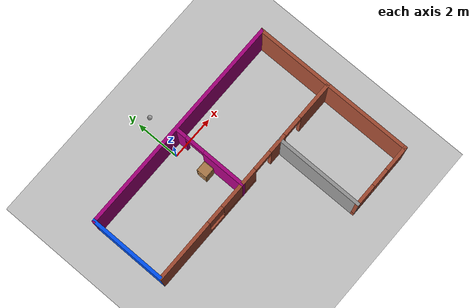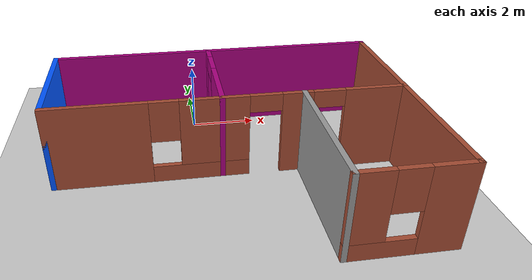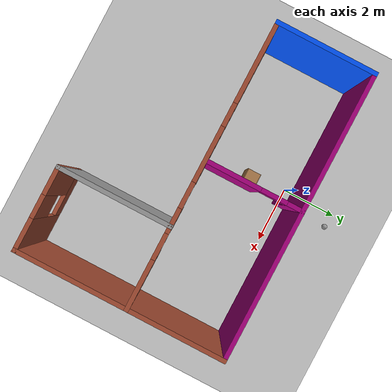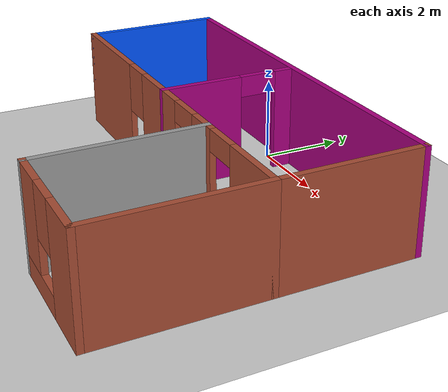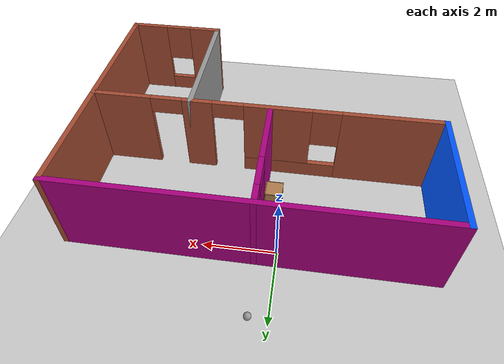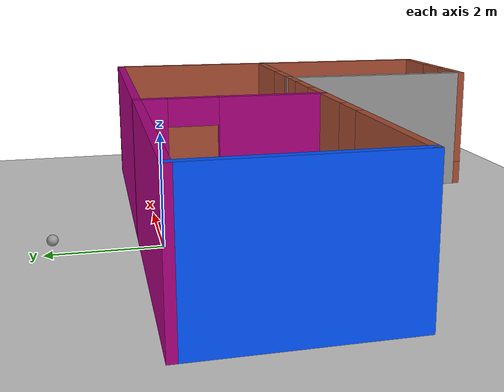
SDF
<sdf version="1.6">
 <world name="default">
  <plugin name="welcome" filename="libwelcome.so"/>
  <light name="sun" type="directional">
   <pose>0 0 10 0 -0 0</pose>
   <diffuse>0.8 0.8 0.8 1</diffuse>
   <specular>0.2 0.2 0.2 1</specular>
   <attenuation>
    <range>1000</range>
    <constant>0.9</constant>
    <linear>0.01</linear>
    <quadratic>0.001</quadratic>
   </attenuation>
   <direction>-0.5 0.1 -0.9</direction>
  </light>
  <model name="ground_plane">
   <static>1</static>
   <link name="link">
    <collision name="collision">
     <geometry><plane><normal>0 0 1</normal><size>100 100</size></plane></geometry>
     <surface><friction><ode><mu>100</mu><mu2>50</mu2></ode></friction></surface>
    </collision>
    <visual name="visual">
     <cast_shadows>0</cast_shadows>
     <geometry><plane><normal>0 0 1</normal><size>100 100</size></plane></geometry>
     <material>
      <script><uri>file://media/materials/scripts/gazebo.material</uri><name>Gazebo/Grey</name></script>
     </material>
    </visual>
   </link>
  </model>
  <gravity>0 0 -9.8</gravity>
  <magnetic_field>6e-06 2.3e-05 -4.2e-05</magnetic_field>
  <atmosphere type="adiabatic"/>
  <physics name="default_physics" default="0" type="ode">
   <max_step_size>0.001</max_step_size>
   <real_time_factor>1</real_time_factor>
   <real_time_update_rate>1000</real_time_update_rate>
  </physics>
  <scene><ambient>0.4 0.4 0.4 1</ambient><background>0.7 0.7 0.7 1</background><shadows>1</shadows></scene>
  <spherical_coordinates>
   <surface_model>EARTH_WGS84</surface_model>
   <latitude_deg>0</latitude_deg>
   <longitude_deg>0</longitude_deg>
   <elevation>0</elevation>
   <heading_deg>0</heading_deg>
  </spherical_coordinates>
  <model name="prj1_building">
   <pose>0.75687 -3.26578 0 0 -0 0</pose>
   <link name="Wall_33">
    <collision name="Wall_33_Collision">
     <geometry><box><size>3.5 0.15 2.5</size></box></geometry>
     <pose>0 0 1.25 0 -0 0</pose>
    </collision>
    <visual name="Wall_33_Visual">
     <pose>0 0 1.25 0 -0 0</pose>
     <geometry><box><size>3.5 0.15 2.5</size></box></geometry>
     <material>
      <script><uri>file://media/materials/scripts/gazebo.material</uri><name>Gazebo/Grey</name></script>
      <ambient>0 0.333333 1 1</ambient>
     </material>
     <meta><layer>0</layer></meta>
    </visual>
    <pose>-4.925 1.925 0 0 0 -1.5708</pose>
   </link>
   <link name="Wall_34">
    <pose>0 0.25 0 0 -0 0</pose>
    <visual name="Wall_34_Visual_0">
     <pose>-3.57883 0 1.25 0 -0 0</pose>
     <geometry><box><size>2.84234 0.15 2.5</size></box></geometry>
     <material>
      <script><uri>file://media/materials/scripts/gazebo.material</uri><name>Gazebo/Bricks</name></script>
      <ambient>1 1 1 1</ambient>
     </material>
     <meta><layer>0</layer></meta>
    </visual>
    <collision name="Wall_34_Collision_0">
     <geometry><box><size>2.84234 0.15 2.5</size></box></geometry>
     <pose>-3.57883 0 1.25 0 -0 0</pose>
    </collision>
    <visual name="Wall_34_Visual_1">
     <pose>1.88711 0 1.25 0 -0 0</pose>
     <geometry><box><size>0.866598 0.15 2.5</size></box></geometry>
     <material>
      <script><uri>file://media/materials/scripts/gazebo.material</uri><name>Gazebo/Bricks</name></script>
      <ambient>1 1 1 1</ambient>
     </material>
     <meta><layer>0</layer></meta>
    </visual>
    <collision name="Wall_34_Collision_1">
     <geometry><box><size>0.866598 0.15 2.5</size></box></geometry>
     <pose>1.88711 0 1.25 0 -0 0</pose>
    </collision>
    <visual name="Wall_34_Visual_2">
     <pose>4.1102 0 1.25 0 -0 0</pose>
     <geometry><box><size>1.7796 0.15 2.5</size></box></geometry>
     <material>
      <script><uri>file://media/materials/scripts/gazebo.material</uri><name>Gazebo/Bricks</name></script>
      <ambient>1 1 1 1</ambient>
     </material>
     <meta><layer>0</layer></meta>
    </visual>
    <collision name="Wall_34_Collision_2">
     <geometry><box><size>1.7796 0.15 2.5</size></box></geometry>
     <pose>4.1102 0 1.25 0 -0 0</pose>
    </collision>
    <visual name="Wall_34_Visual_3">
     <pose>-0.801928 0 0.25 0 -0 0</pose>
     <geometry><box><size>2.71147 0.15 0.5</size></box></geometry>
     <material>
      <script><uri>file://media/materials/scripts/gazebo.material</uri><name>Gazebo/Bricks</name></script>
      <ambient>1 1 1 1</ambient>
     </material>
     <meta><layer>0</layer></meta>
    </visual>
    <collision name="Wall_34_Collision_3">
     <geometry><box><size>2.71147 0.15 0.5</size></box></geometry>
     <pose>-0.801928 0 0.25 0 -0 0</pose>
    </collision>
    <visual name="Wall_34_Visual_4">
     <pose>-0.401928 0 1.5 0 -0 0</pose>
     <geometry><box><size>1.91147 0.15 2</size></box></geometry>
     <material>
      <script><uri>file://media/materials/scripts/gazebo.material</uri><name>Gazebo/Bricks</name></script>
      <ambient>1 1 1 1</ambient>
     </material>
     <meta><layer>0</layer></meta>
    </visual>
    <collision name="Wall_34_Collision_4">
     <geometry><box><size>1.91147 0.15 2</size></box></geometry>
     <pose>-0.401928 0 1.5 0 -0 0</pose>
    </collision>
    <visual name="Wall_34_Visual_5">
     <pose>-1.75766 0 1.9 0 -0 0</pose>
     <geometry><box><size>0.8 0.15 1.2</size></box></geometry>
     <material>
      <script><uri>file://media/materials/scripts/gazebo.material</uri><name>Gazebo/Bricks</name></script>
      <ambient>1 1 1 1</ambient>
     </material>
     <meta><layer>0</layer></meta>
    </visual>
    <collision name="Wall_34_Collision_5">
     <geometry><box><size>0.8 0.15 1.2</size></box></geometry>
     <pose>-1.75766 0 1.9 0 -0 0</pose>
    </collision>
    <visual name="Wall_34_Visual_6">
     <pose>2.7704 0 2.25 0 -0 0</pose>
     <geometry><box><size>0.9 0.15 0.5</size></box></geometry>
     <material>
      <script><uri>file://media/materials/scripts/gazebo.material</uri><name>Gazebo/Bricks</name></script>
      <ambient>1 1 1 1</ambient>
     </material>
     <meta><layer>0</layer></meta>
    </visual>
    <collision name="Wall_34_Collision_6">
     <geometry><box><size>0.9 0.15 0.5</size></box></geometry>
     <pose>2.7704 0 2.25 0 -0 0</pose>
    </collision>
    <visual name="Wall_34_Visual_7">
     <pose>1.00381 0 2.25 0 -0 0</pose>
     <geometry><box><size>0.9 0.15 0.5</size></box></geometry>
     <material>
      <script><uri>file://media/materials/scripts/gazebo.material</uri><name>Gazebo/Bricks</name></script>
      <ambient>1 1 1 1</ambient>
     </material>
     <meta><layer>0</layer></meta>
    </visual>
    <collision name="Wall_34_Collision_7">
     <geometry><box><size>0.9 0.15 0.5</size></box></geometry>
     <pose>1.00381 0 2.25 0 -0 0</pose>
    </collision>
   </link>
   <link name="Wall_35">
    <collision name="Wall_35_Collision">
     <geometry><box><size>3.5 0.15 2.5</size></box></geometry>
     <pose>0 0 1.25 0 -0 0</pose>
    </collision>
    <visual name="Wall_35_Visual">
     <pose>0 0 1.25 0 -0 0</pose>
     <geometry><box><size>3.5 0.15 2.5</size></box></geometry>
     <material>
      <script><uri>file://media/materials/scripts/gazebo.material</uri><name>Gazebo/Bricks</name></script>
      <ambient>1 1 1 1</ambient>
     </material>
     <meta><layer>0</layer></meta>
    </visual>
    <pose>4.925 1.925 0 0 -0 1.5708</pose>
   </link>
   <link name="Wall_36">
    <collision name="Wall_36_Collision">
     <geometry><box><size>10 0.15 2.5</size></box></geometry>
     <pose>0 0 1.25 0 -0 0</pose>
    </collision>
    <visual name="Wall_36_Visual">
     <pose>0 0 1.25 0 -0 0</pose>
     <geometry><box><size>10 0.15 2.5</size></box></geometry>
     <material>
      <script><uri>file://media/materials/scripts/gazebo.material</uri><name>Gazebo/Grey</name></script>
      <ambient>0.666667 0 0.498039 1</ambient>
     </material>
     <meta><layer>0</layer></meta>
    </visual>
    <pose>0 3.6 0 0 -0 3.14159</pose>
   </link>
   <link name="Wall_38">
    <pose>-0.198311 1.925 0 0 0 -1.5708</pose>
    <visual name="Wall_38_Visual_0">
     <pose>-1.44985 0 1.25 0 -0 0</pose>
     <geometry><box><size>0.600302 0.15 2.5</size></box></geometry>
     <material>
      <script><uri>file://media/materials/scripts/gazebo.material</uri><name>Gazebo/Grey</name></script>
      <ambient>0.666667 0 0.498039 1</ambient>
     </material>
     <meta><layer>0</layer></meta>
    </visual>
    <collision name="Wall_38_Collision_0">
     <geometry><box><size>0.600302 0.15 2.5</size></box></geometry>
     <pose>-1.44985 0 1.25 0 -0 0</pose>
    </collision>
    <visual name="Wall_38_Visual_1">
     <pose>0.750151 0 1.25 0 -0 0</pose>
     <geometry><box><size>1.9997 0.15 2.5</size></box></geometry>
     <material>
      <script><uri>file://media/materials/scripts/gazebo.material</uri><name>Gazebo/Grey</name></script>
      <ambient>0.666667 0 0.498039 1</ambient>
     </material>
     <meta><layer>0</layer></meta>
    </visual>
    <collision name="Wall_38_Collision_1">
     <geometry><box><size>1.9997 0.15 2.5</size></box></geometry>
     <pose>0.750151 0 1.25 0 -0 0</pose>
    </collision>
    <visual name="Wall_38_Visual_2">
     <pose>-0.699698 0 2.25 0 -0 0</pose>
     <geometry><box><size>0.9 0.15 0.5</size></box></geometry>
     <material>
      <script><uri>file://media/materials/scripts/gazebo.material</uri><name>Gazebo/Grey</name></script>
      <ambient>0.666667 0 0.498039 1</ambient>
     </material>
     <meta><layer>0</layer></meta>
    </visual>
    <collision name="Wall_38_Collision_2">
     <geometry><box><size>0.9 0.15 0.5</size></box></geometry>
     <pose>-0.699698 0 2.25 0 -0 0</pose>
    </collision>
   </link>
   <link name="Wall_44">
    <collision name="Wall_44_Collision">
     <geometry><box><size>4 0.15 2.5</size></box></geometry>
     <pose>0 0 1.25 0 -0 0</pose>
    </collision>
    <visual name="Wall_44_Visual">
     <pose>0 0 1.25 0 -0 0</pose>
     <geometry><box><size>4 0.15 2.5</size></box></geometry>
     <material>
      <script><uri>file://media/materials/scripts/gazebo.material</uri><name>Gazebo/Bricks</name></script>
      <ambient>1 1 1 1</ambient>
     </material>
     <meta><layer>0</layer></meta>
    </visual>
    <pose>4.925 -1.675 0 0 0 -1.5708</pose>
   </link>
   <link name="Wall_45">
    <pose>3.5 -3.6 0 0 -0 3.14159</pose>
    <visual name="Wall_45_Visual_0">
     <pose>-0.907945 0 1.25 0 -0 0</pose>
     <geometry><box><size>1.18411 0.15 2.5</size></box></geometry>
     <material>
      <script><uri>file://media/materials/scripts/gazebo.material</uri><name>Gazebo/Bricks</name></script>
      <ambient>1 1 1 1</ambient>
     </material>
     <meta><layer>0</layer></meta>
    </visual>
    <collision name="Wall_45_Collision_0">
     <geometry><box><size>1.18411 0.15 2.5</size></box></geometry>
     <pose>-0.907945 0 1.25 0 -0 0</pose>
    </collision>
    <visual name="Wall_45_Visual_1">
     <pose>0.592055 0 0.25 0 -0 0</pose>
     <geometry><box><size>1.81589 0.15 0.5</size></box></geometry>
     <material>
      <script><uri>file://media/materials/scripts/gazebo.material</uri><name>Gazebo/Bricks</name></script>
      <ambient>1 1 1 1</ambient>
     </material>
     <meta><layer>0</layer></meta>
    </visual>
    <collision name="Wall_45_Collision_1">
     <geometry><box><size>1.81589 0.15 0.5</size></box></geometry>
     <pose>0.592055 0 0.25 0 -0 0</pose>
    </collision>
    <visual name="Wall_45_Visual_2">
     <pose>0.992055 0 1.5 0 -0 0</pose>
     <geometry><box><size>1.01589 0.15 2</size></box></geometry>
     <material>
      <script><uri>file://media/materials/scripts/gazebo.material</uri><name>Gazebo/Bricks</name></script>
      <ambient>1 1 1 1</ambient>
     </material>
     <meta><layer>0</layer></meta>
    </visual>
    <collision name="Wall_45_Collision_2">
     <geometry><box><size>1.01589 0.15 2</size></box></geometry>
     <pose>0.992055 0 1.5 0 -0 0</pose>
    </collision>
    <visual name="Wall_45_Visual_3">
     <pose>0.08411 0 1.9 0 -0 0</pose>
     <geometry><box><size>0.8 0.15 1.2</size></box></geometry>
     <material>
      <script><uri>file://media/materials/scripts/gazebo.material</uri><name>Gazebo/Bricks</name></script>
      <ambient>1 1 1 1</ambient>
     </material>
     <meta><layer>0</layer></meta>
    </visual>
    <collision name="Wall_45_Collision_3">
     <geometry><box><size>0.8 0.15 1.2</size></box></geometry>
     <pose>0.08411 0 1.9 0 -0 0</pose>
    </collision>
   </link>
   <link name="Wall_46">
    <collision name="Wall_46_Collision">
     <geometry><box><size>4 0.15 2.5</size></box></geometry>
     <pose>0 0 1.25 0 -0 0</pose>
    </collision>
    <visual name="Wall_46_Visual">
     <pose>0 0 1.25 0 -0 0</pose>
     <geometry><box><size>4 0.15 2.5</size></box></geometry>
     <material>
      <script><uri>file://media/materials/scripts/gazebo.material</uri><name>Gazebo/Grey</name></script>
      <ambient>1 1 1 1</ambient>
     </material>
     <meta><layer>0</layer></meta>
    </visual>
    <pose>2.075 -1.675 0 0 -0 1.5708</pose>
   </link>
   <static>1</static>
  </model>
  <model name="cabinet">
   <static>1</static>
   <link name="cabinet_bottom_plate">
    <inertial>
     <pose>0 0 -1 0 -0 0</pose>
     <inertia><ixx>2.05</ixx><ixy>0</ixy><ixz>0</ixz><iyy>2.05</iyy><iyz>0</iyz><izz>2.05</izz></inertia>
     <mass>25</mass>
    </inertial>
    <collision name="cabinet_bottom_plate_geom">
     <pose>0 0 0.01 0 -0 0</pose>
     <geometry><box><size>0.45 0.45 0.02</size></box></geometry>
    </collision>
    <visual name="cabinet_bottom_plate_geom_visual">
     <pose>0 0 0.01 0 -0 0</pose>
     <geometry><box><size>0.45 0.45 0.02</size></box></geometry>
     <material>
      <script><uri>file://media/materials/scripts/gazebo.material</uri><name>Gazebo/Wood</name></script>
     </material>
    </visual>
    <collision name="cabinet_bottom_plate_geom_cabinet_back_plate">
     <pose>0.235 0 0.51 0 -0 0</pose>
     <geometry><box><size>0.02 0.45 1.02</size></box></geometry>
    </collision>
    <visual name="cabinet_bottom_plate_geom_cabinet_back_plate_visual">
     <pose>0.235 0 0.51 0 -0 0</pose>
     <geometry><box><size>0.02 0.45 1.02</size></box></geometry>
     <material>
      <script><uri>file://media/materials/scripts/gazebo.material</uri><name>Gazebo/Wood</name></script>
     </material>
    </visual>
    <collision name="cabinet_bottom_plate_geom_cabinet_left_plate">
     <pose>0 0.235 0.51 0 -0 0</pose>
     <geometry><box><size>0.45 0.02 1.02</size></box></geometry>
    </collision>
    <visual name="cabinet_bottom_plate_geom_cabinet_left_plate_visual">
     <pose>0 0.235 0.51 0 -0 0</pose>
     <geometry><box><size>0.45 0.02 1.02</size></box></geometry>
     <material>
      <script><uri>file://media/materials/scripts/gazebo.material</uri><name>Gazebo/Wood</name></script>
     </material>
    </visual>
    <collision name="cabinet_bottom_plate_geom_cabinet_middle_plate">
     <pose>0 0 0.51 0 -0 0</pose>
     <geometry><box><size>0.45 0.45 0.02</size></box></geometry>
    </collision>
    <visual name="cabinet_bottom_plate_geom_cabinet_middle_plate_visual">
     <pose>0 0 0.51 0 -0 0</pose>
     <geometry><box><size>0.45 0.45 0.02</size></box></geometry>
     <material>
      <script><uri>file://media/materials/scripts/gazebo.material</uri><name>Gazebo/Wood</name></script>
     </material>
    </visual>
    <collision name="cabinet_bottom_plate_geom_cabinet_right_plate">
     <pose>0 -0.235 0.51 0 -0 0</pose>
     <geometry><box><size>0.45 0.02 1.02</size></box></geometry>
    </collision>
    <visual name="cabinet_bottom_plate_geom_cabinet_right_plate_visual">
     <pose>0 -0.235 0.51 0 -0 0</pose>
     <geometry><box><size>0.45 0.02 1.02</size></box></geometry>
     <material>
      <script><uri>file://media/materials/scripts/gazebo.material</uri><name>Gazebo/Wood</name></script>
     </material>
    </visual>
    <collision name="cabinet_bottom_plate_geom_cabinet_top_plate">
     <pose>0 0 1.01 0 -0 0</pose>
     <geometry><box><size>0.45 0.45 0.02</size></box></geometry>
    </collision>
    <visual name="cabinet_bottom_plate_geom_cabinet_top_plate_visual">
     <pose>0 0 1.01 0 -0 0</pose>
     <geometry><box><size>0.45 0.45 0.02</size></box></geometry>
     <material>
      <script><uri>file://media/materials/scripts/gazebo.material</uri><name>Gazebo/Wood</name></script>
     </material>
    </visual>
   </link>
   <pose>0.231049 -1.36964 0 0 -0 0</pose>
  </model>
  <model name="my_ball">
   <link name="link_0">
    <inertial>
     <mass>1</mass>
     <inertia><ixx>0.1</ixx><ixy>0</ixy><ixz>0</ixz><iyy>0.1</iyy><iyz>0</iyz><izz>0.1</izz></inertia>
    </inertial>
    <visual name="visual">
     <geometry><sphere><radius>0.1</radius></sphere></geometry>
     <material>
      <lighting>1</lighting>
      <script><uri>file://media/materials/scripts/gazebo.material</uri><name>Gazebo/Grey</name></script>
      <shader type="pixel"><normal_map>__default__</normal_map></shader>
      <ambient>1 1 1 1</ambient>
      <diffuse>1 1 1 1</diffuse>
      <specular>1 1 1 1</specular>
      <emissive>1 1 1 1</emissive>
     </material>
    </visual>
    <collision name="collision">
     <geometry><sphere><radius>0.1</radius></sphere></geometry>
     <surface>
      <friction>
       <ode><mu>1</mu><mu2>1</mu2><fdir1>0 0 0</fdir1><slip1>0</slip1><slip2>0</slip2></ode>
       <torsional>
        <coefficient>1</coefficient>
        <patch_radius>0</patch_radius>
        <surface_radius>0</surface_radius>
        <use_patch_radius>1</use_patch_radius>
        <ode><slip>0</slip></ode>
       </torsional>
      </friction>
      <bounce><restitution_coefficient>0</restitution_coefficient><threshold>1e+06</threshold></bounce>
      <contact>
       <collide_without_contact>0</collide_without_contact>
       <collide_without_contact_bitmask>1</collide_without_contact_bitmask>
       <collide_bitmask>1</collide_bitmask>
       <ode>
        <soft_cfm>0</soft_cfm>
        <soft_erp>0.2</soft_erp>
        <kp>1e+13</kp>
        <kd>1</kd>
        <max_vel>0.01</max_vel>
        <min_depth>0</min_depth>
       </ode>
       <bullet>
        <split_impulse>1</split_impulse>
        <split_impulse_penetration_threshold>-0.01</split_impulse_penetration_threshold>
        <soft_cfm>0</soft_cfm>
        <soft_erp>0.2</soft_erp>
        <kp>1e+13</kp>
        <kd>1</kd>
       </bullet>
      </contact>
     </surface>
    </collision>
   </link>
   <static>0</static>
   <pose>0.496028 1.86386 0.1 0 -0 0</pose>
  </model>
 </world>
</sdf>
